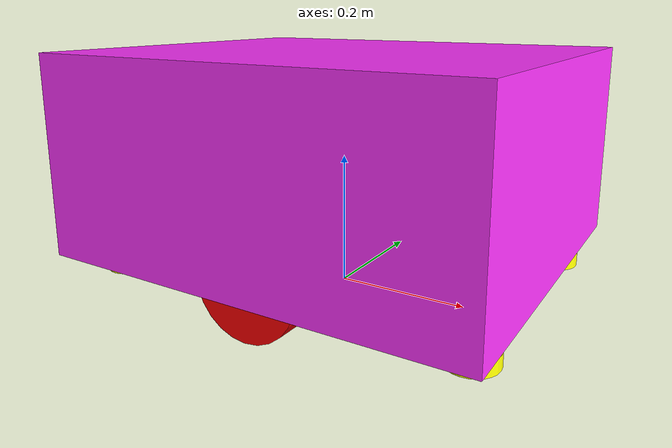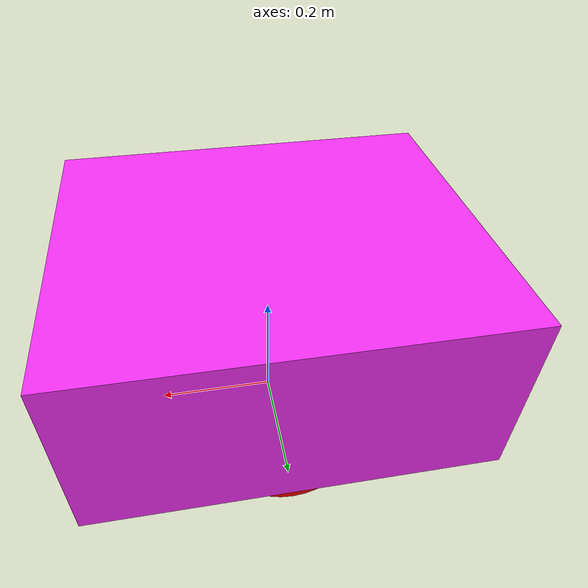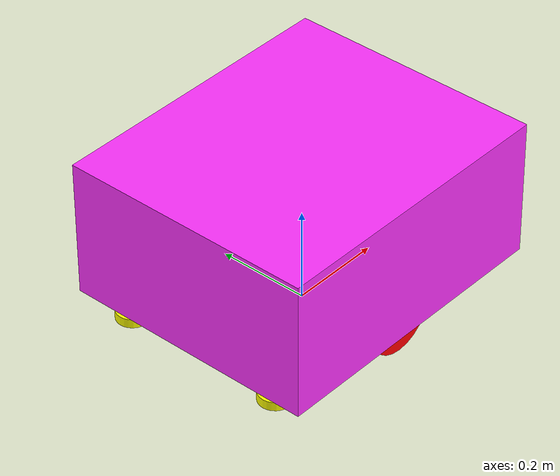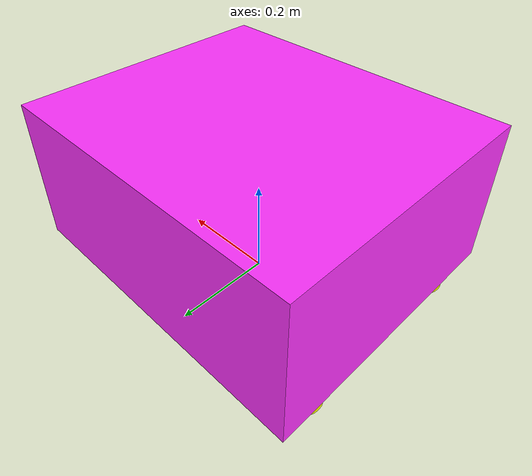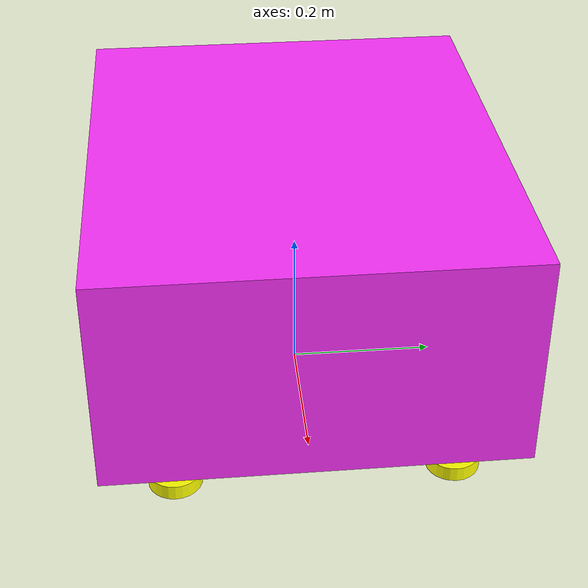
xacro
<?xml version="1.0" ?>
<robot name= "tao" xmlns:xacro="http://www.ros.org.wiki/xacro">

 	<xacro:include filename="$(find tao_description)/urdf/tao_properties.xacro" />
 	<xacro:include filename="$(find tao_description)/urdf/tao_chassis.xacro" />
 	<xacro:include filename="$(find tao_description)/urdf/tao_wheel.xacro" />
 	<xacro:include filename="$(find tao_description)/urdf/tao_castor.xacro" />

	<xacro:chassis
		r="1" g="0.2" b="1" a="1"
		parentt="base_footprint2" childd="base_link2"/>

	<xacro:wheel
 		name="left2"
 		translation="
 			0
 			${WHEEL_SEPARATION/2}
 			${WHEEL_RADIUS-(BASE_HEIGHT/2+BASE_ELEVATION)}"
 		rotation="0 0 0"
 		parent="base_link2"/>

 	<xacro:wheel
 		name="right2"
 		translation="
 			0
 			${-WHEEL_SEPARATION/2}
 			${WHEEL_RADIUS-(BASE_HEIGHT/2+BASE_ELEVATION)}"
 		rotation="0 0 0"
 		parent="base_link2"/>

 	<xacro:castor
 		name="right_front2"
 		translation="
 			${CASTOR_SEPARATION_X/2}
 			${CASTOR_SEPARATION_Y/2}
 			${CASTOR_RADIUS-(BASE_HEIGHT/2+BASE_ELEVATION)}"
 		rotation="0 0 0"
 		parent="base_link2"/>

 	<xacro:castor
 		name="left_front2"
 		translation="
 			${CASTOR_SEPARATION_X/2}
 			${-CASTOR_SEPARATION_Y/2}
 			${CASTOR_RADIUS-(BASE_HEIGHT/2+BASE_ELEVATION)}"
 		rotation="0 0 0"
 		parent="base_link2"/>
 	<xacro:castor
 		name="right_rear2"
 		translation="
 			${-CASTOR_SEPARATION_X/2}
 			${CASTOR_SEPARATION_Y/2}
 			${CASTOR_RADIUS-(BASE_HEIGHT/2+BASE_ELEVATION)}"
 		rotation="0 0 0"
 		parent="base_link2"/>
 	<xacro:castor
 		name="left_rear2"
 		translation="
 			${-CASTOR_SEPARATION_X/2}
 			${-CASTOR_SEPARATION_Y/2}
 			${CASTOR_RADIUS-(BASE_HEIGHT/2+BASE_ELEVATION)}"
 		rotation="0 0 0"
 		parent="base_link2"/>

</robot>

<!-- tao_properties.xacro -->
<robot xmlns:xacro="http://www.ros.org.wiki/xacro">

	<xacro:property name= "PI" value= "3.1415926535897931"/>
 	<xacro:property name= "C_HASSIS_LENGTH" value= "0.65"/>
 	<xacro:property name= "CHASSIS_WIDTH" value= "0.55"/>
 	<xacro:property name= "CHASSIS_HEIGHT" value= "0.295"/>
 	<xacro:property name= "CHASSIS_ELEVATION" value= "0.065"/>

 	<xacro:property name= "WHEEL_RADIUS" value= "0.08"/>
 	<xacro:property name= "WHEEL_THICKNESS" value= "0.04"/>
 	<xacro:property name= "WHEEL_SEPARATION" value= "0.45"/>

 	<xacro:property name= "CASTOR_RADIUS" value= "0.035"/>
 	<xacro:property name= "CASTOR_SEPARATION_X" value= "0.56"/>
 	<xacro:property name= "CASTOR_SEPARATION_Y" value= "0.36"/>
 	<xacro:property name= "CASTOR_THICKNESS" value= "0.02"/>
	<xacro:property name= "CASTOSR_THICKNESS" value= "0.02"/>

	<xacro:property name= "BASE_HEIGHT" value= "0.295"/>
	<xacro:property name= "BASE_ELEVATION" value= "0.065"/>
	<xacro:property name= "BASE_LENGTH" value= "0.65"/>
	<xacro:property name= "BASE_WIDTH" value= "0.55"/>

</robot>

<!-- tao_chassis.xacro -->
<robot name= "tao_chassis" xmlns:xacro="http://www.ros.org.wiki/xacro">

	<xacro:include filename="$(find tao_description)/urdf/tao_properties.xacro"/>

	<xacro:macro name="chassis" params="r g b a parentt childd">
		<link name= "${parentt}"/>
		<link name= "${childd}">
			<visual>
				<geometry>
					<box size="${BASE_LENGTH}
						${BASE_WIDTH}
						${BASE_HEIGHT}"/>
				</geometry>
				<material name="chassis_color">
					<color rgba= "${r} ${g} ${b} ${a}"/>
				</material>
			</visual>
		</link>
		<joint name= "${parentt}_to_${childd}" type="fixed">
			<parent link= "${parentt}"/>
			<child link= "${childd}"/>
			<origin xyz ="0 0 ${BASE_ELEVATION+BASE_HEIGHT/2}"/>
		</joint>
	</xacro:macro>

</robot>

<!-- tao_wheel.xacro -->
<robot name= "tao_wheel" xmlns:xacro="http://www.ros.org.wiki/xacro">

 	<xacro:include filename="$(find tao_description)/urdf/tao_properties.xacro" />

	<xacro:macro name="wheel" params="name translation rotation parent">
 		<link name= "${name}_wheel">

			<visual>
 				<origin rpy="${PI/2} 0 0"/>

				<geometry>
 					<cylinder radius="${WHEEL_RADIUS}"
 						length="${WHEEL_THICKNESS}"/>
 				</geometry>

				<material name="${name}+_wheel_color">
 					<color rgba= "1 0 0 1"/>
				</material>

			</visual>

		</link>

		<joint name= "${name}_wheel_joint" type="fixed">
			<parent link="${parent}"/>
			<child link="${name}_wheel"/>
 			<origin xyz="${translation}" rpy="${rotation}"/>
 			<axis xyz="0 1 0"/>
 		</joint>

 	</xacro:macro>

</robot>

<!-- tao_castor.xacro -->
<robot name= "tao_castor" xmlns:xacro="http://www.ros.org.wiki/xacro">

 	<xacro:include filename="$(find tao_description)/urdf/tao_properties.xacro"/>

	<xacro:macro name="castor" params="name translation rotation parent">
 		<link name= "${name}_castor">
 			<visual>
 				<origin rpy="0 0 0"/>

 				<geometry>
 					<cylinder radius="${CASTOR_RADIUS}"
 						length="${CASTOSR_THICKNESS}"/>
 				</geometry>

 				<material name="${name}_castor_color">
 					<color rgba= "1 1 0 1"/>
				</material>
			</visual>
		</link>

		<joint name= "${name}_wheel_joint" type="fixed">
			<parent link="${parent}"/>
			<child link="${name}_castor"/>
 			<origin xyz="${translation}" rpy="${rotation}"/>
 		</joint>
 	</xacro:macro>

</robot>
